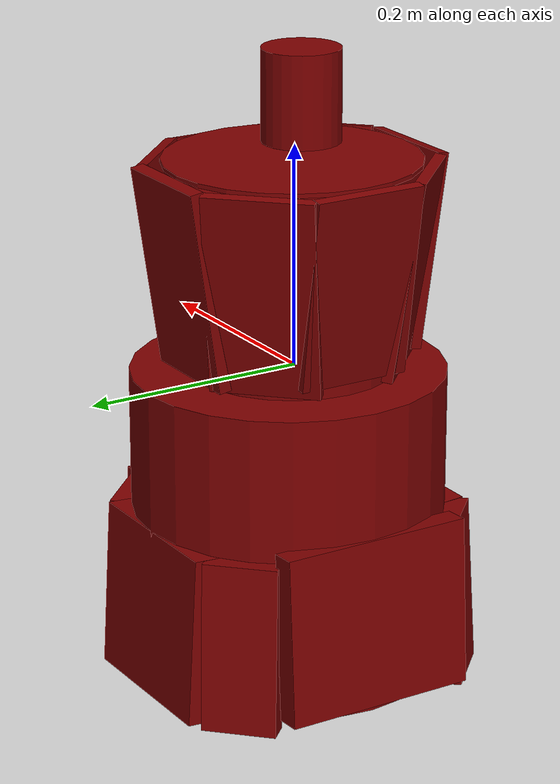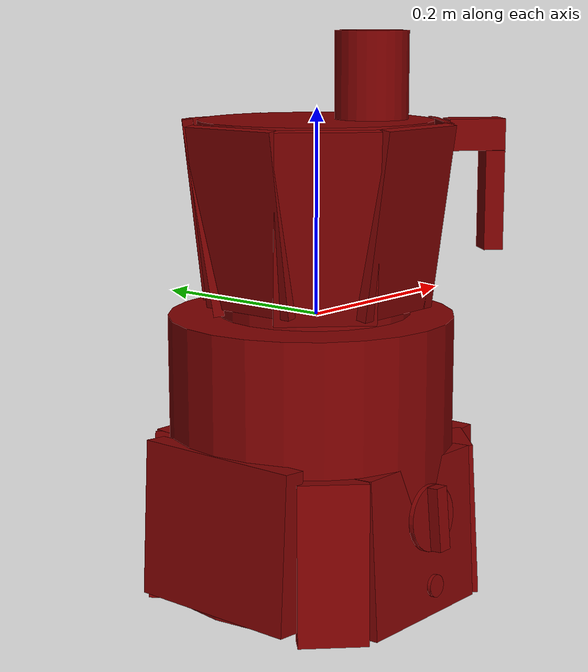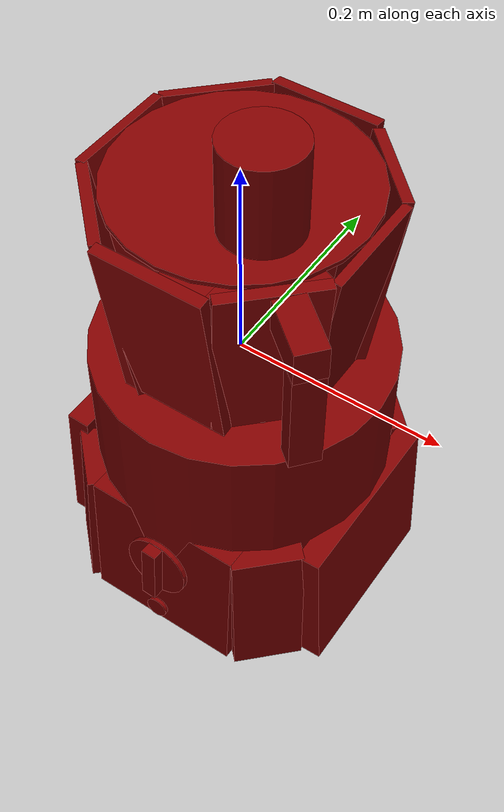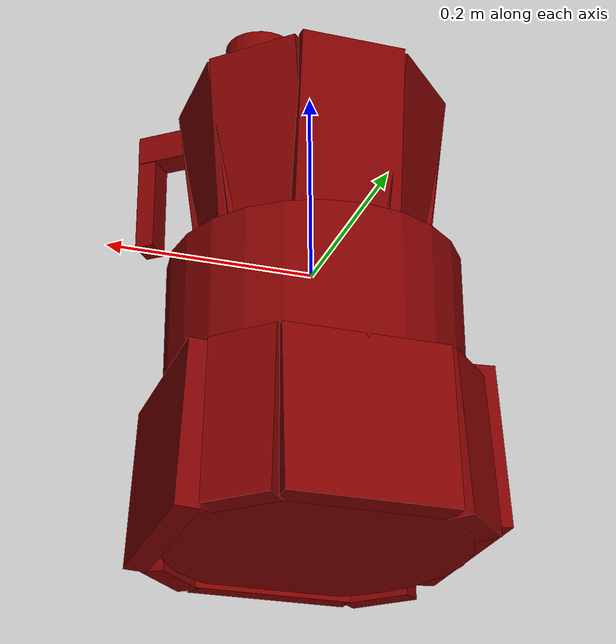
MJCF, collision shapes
<?xml version='1.0' encoding='UTF-8'?>
<mujoco model="model">
  <option timestep="0.002" gravity="0.0 0.0 -9.81"/>
  <compiler angle="radian"/>
  <asset>
    <mesh file="visuals/Blade001.obj" name="Blade001_vis"/>
    <mesh file="visuals/Body001.obj" name="Body001_vis"/>
    <mesh file="visuals/Button001.obj" name="Button001_vis"/>
    <mesh file="visuals/Jug001.obj" name="Jug001_vis"/>
    <mesh file="visuals/Jug001_Clear.obj" name="Jug001_Clear_vis"/>
    <mesh file="visuals/Knob001.obj" name="Knob001_vis"/>
    <mesh file="visuals/Lid001.obj" name="Lid001_vis"/>
    <texture file="visuals/T_BC001.png" name="Body001_material" type="2d"/>
    <material name="Body001_material" rgba="1 1 1 1.0" texture="Body001_material" shininess="0.1" specular="0.4"/>
    <texture file="visuals/T_BC001.png" name="Button001_material" type="2d"/>
    <material name="Button001_material" rgba="1 1 1 1.0" texture="Button001_material" shininess="0.4472135901451111" specular="2"/>
    <texture file="visuals/T_BC001.png" name="Jug001_material" type="2d"/>
    <material name="Jug001_material" rgba="1 1 1 1.0" texture="Jug001_material" shininess="0.4472135901451111" specular="2"/>
    <texture file="visuals/T_BC001.png" name="Blade001_material" type="2d"/>
    <material name="Blade001_material" rgba="1 1 1 1.0" texture="Blade001_material" shininess="0.4472135901451111" specular="2"/>
    <texture file="visuals/T_BC001.png" name="Jug001_Clear_material" type="2d"/>
    <material name="Jug001_Clear_material" rgba="1 1 1 0.800000011920929" texture="Jug001_Clear_material" shininess="0.6880392730236053" specular="0.3"/>
    <texture file="visuals/T_BC001.png" name="Lid001_material" type="2d"/>
    <material name="Lid001_material" rgba="1 1 1 1.0" texture="Lid001_material" shininess="0.4472135901451111" specular="2"/>
    <texture file="visuals/T_BC001.png" name="Knob001_material" type="2d"/>
    <material name="Knob001_material" rgba="1 1 1 1.0" texture="Knob001_material" shininess="0.4472135901451111" specular="2"/>
  </asset>
  <default>
    <default class="visual">
      <geom conaffinity="0" contype="0" group="1" type="mesh"/>
    </default>
    <default class="collision">
      <geom group="0" rgba="0.5 0 0 0.5"/>
    </default>
    <default class="spawn">
      <geom group="0" rgba="1 1 1 0.5" contype="0" conaffinity="0"/>
      <site group="0" rgba="1 1 1 0.5"/>
    </default>
    <default class="region">
      <geom group="1" conaffinity="0" contype="0" rgba="0 1 0 0"/>
    </default>
  </default>
  <worldbody>
    <body>
      <body name="object">
        <geom mesh="Body001_vis" type="mesh" solimp="0.998 0.998 0.001" solref="0.001 1" friction="0.95 0.3 0.1" class="visual" material="Body001_material"/>
        <geom class="collision" type="box" pos="-0.13592041 0.00416990 -0.19115232" size="0.011498981155455112 0.08904076367616653 0.07649284601211548" quat="0.9995970129966736 0.0 0.028387276455760002 0.0"/>
        <geom class="collision" type="cylinder" pos="-0.00066953 0.00646827 -0.13779943" size="0.14031340181827545 0.13831281661987305" quat="1.0 0.0 0.0 0.0"/>
        <geom class="collision" type="box" pos="0.13594456 0.00218360 -0.20372824" size="0.011498981155455112 0.08964601904153824 0.07649284601211548" quat="0.9995970129966736 0.0 -0.02838727831840515 0.0"/>
        <geom class="collision" type="box" pos="-0.00023109 0.13935284 -0.20372824" size="0.011498981155455112 0.07770014554262161 0.07649284601211548" quat="0.706821858882904 0.020072845742106438 -0.020072847604751587 0.7068217992782593"/>
        <geom class="collision" type="box" pos="0.09919563 0.11513875 -0.20402126" size="0.011498980224132538 0.03311116248369217 0.07649284601211548" quat="0.9235072135925293 0.010863340459764004 -0.026226429268717766 0.38252919912338257"/>
        <geom class="collision" type="box" pos="-0.10141344 0.11513874 -0.20402126" size="0.011498981155455112 0.03311115875840187 0.07649284601211548" quat="0.9235072135925293 0.010863344185054302 0.026226438581943512 -0.3825291395187378"/>
        <geom class="collision" type="box" pos="-0.10141344 -0.10372262 -0.20402126" size="0.011498981155455112 0.03311115875840187 0.07649284601211548" quat="0.9235072135925293 -0.0108633479103446 0.026226449757814407 0.3825291693210602"/>
        <geom class="collision" type="box" pos="0.09919562 -0.10372262 -0.20402126" size="0.011498981155455112 0.03311115875840187 0.07649284601211548" quat="0.9235072135925293 -0.010863343253731728 -0.026226434856653214 -0.3825291395187378"/>
        <geom class="collision" type="box" pos="-0.00023109 -0.12329688 -0.20378314" size="0.01053176075220108 0.07770014554262161 0.07649284601211548" quat="0.706821858882904 -0.020072845742106438 -0.020072847604751587 -0.7068217992782593"/>
        <body name="Button001">
          <joint axis="0.0 0.9966602325439453 -0.08166057616472244" pos="0.00150807 -0.14566042 -0.24573395" limited="true" name="Button001_joint" range="0.0 0.003" type="slide" damping="1" frictionloss="1" armature=".01" stiffness="0.05" springref="-0.5"/>
          <geom mesh="Button001_vis" type="mesh" solimp="0.998 0.998 0.001" solref="0.001 1" friction="0.95 0.3 0.1" class="visual" material="Button001_material"/>
          <geom class="collision" type="cylinder" pos="0.00170298 -0.14624300 -0.24569818" size="0.010810940526425838 0.001899766270071268" quat="0.6749454736709595 -0.7377176880836487 0.005227869376540184 0.013924829661846161"/>
        </body>
        <body name="Jug001">
          <joint axis="0.0 0.0 1.0" pos="0.01368786 -0.00085856 0.09369694" limited="true" name="Jug001_joint" range="0.0 0.1" type="slide" damping="1" frictionloss="1" armature=".01" stiffness="0.05"/>
          <geom mesh="Jug001_vis" type="mesh" solimp="0.998 0.998 0.001" solref="0.001 1" friction="0.95 0.3 0.1" class="visual" material="Jug001_material"/>
          <geom class="collision" type="cylinder" pos="-0.00102258 0.00505354 0.12870902" size="0.0086982948705554 0.05517284944653511" quat="1.0 0.0 0.0 0.0"/>
          <geom class="collision" type="cylinder" pos="-0.00007492 0.00280522 0.01773963" size="0.09389330446720123 0.016140157356858253" quat="1.0 0.0 0.0 0.0"/>
          <geom class="collision" type="box" pos="0.11953454 -0.09948118 0.17314580" size="0.013613344170153141 0.02776089869439602 0.015190458856523037" quat="0.9058365821838379 0.0 0.0 0.4236273169517517"/>
          <geom class="collision" type="box" pos="0.13307938 -0.11145782 0.10917147" size="0.013502799905836582 0.009573325514793396 0.04846155270934105" quat="0.9058365821838379 0.0 0.0 0.4236273169517517"/>
          <geom class="collision" type="box" pos="0.00082975 0.11225362 0.09796815" size="0.05125673860311508 0.006122444290667772 0.08999137580394745" quat="0.9973172545433044 -0.07320006936788559 0.0 0.0"/>
          <geom class="collision" type="box" pos="0.10576703 0.00173349 0.09742537" size="0.051528241485357285 0.0040107835084199905 0.08897125720977783" quat="0.7052098512649536 -0.0517602264881134 0.051760219037532806 -0.7052097916603088"/>
          <geom class="collision" type="box" pos="0.00082975 -0.10763947 0.09948440" size="0.05125673860311508 0.005388589575886726 0.08828059583902359" quat="7.52953610572149e-08 -5.526434421199156e-09 0.07320006936788559 -0.9973172545433044"/>
          <geom class="collision" type="box" pos="-0.10705413 0.00173347 0.10076386" size="0.051528241485357285 0.00485691474750638 0.08673109114170074" quat="0.7052098512649536 -0.0517602264881134 -0.0517602264881134 0.7052097916603088"/>
          <geom class="collision" type="box" pos="0.07684596 0.07774969 0.09845117" size="0.045730192214250565 0.005176766309887171 0.08872608095407486" quat="0.9214010238647461 -0.06762798875570297 0.028012456372380257 -0.38165685534477234"/>
          <geom class="collision" type="box" pos="-0.07620352 0.07876674 0.09698983" size="0.048428039997816086 0.005164290312677622 0.09014152735471725" quat="0.9214010238647461 -0.06762799620628357 -0.028012439608573914 0.38165685534477234"/>
          <geom class="collision" type="box" pos="-0.07507589 -0.07417214 0.09696825" size="0.04781375452876091 0.004935937002301216 0.09029550850391388" quat="0.38165679574012756 -0.028012432157993317 -0.06762800365686417 0.9214010238647461"/>
          <geom class="collision" type="box" pos="0.07701180 -0.07444855 0.10008390" size="0.04515534266829491 0.0049200886860489845 0.08869536966085434" quat="0.38165679574012756 -0.028012439608573914 0.06762800365686417 -0.9214010238647461"/>
          <geom class="collision" type="cylinder" pos="-0.00102258 0.00505354 0.04985800" size="0.01608540304005146 0.015532627701759338" quat="1.0 0.0 0.0 0.0"/>
          <body name="Blade001">
            <joint axis="0.0 0.0 1.0" pos="-0.00163471 0.00455088 0.07644143" limited="false" name="Blade001_joint" range="0 360" type="hinge" damping="1" frictionloss="1" armature=".01" stiffness="0.05"/>
            <geom mesh="Blade001_vis" type="mesh" solimp="0.998 0.998 0.001" solref="0.001 1" friction="0.95 0.3 0.1" class="visual" material="Blade001_material"/>
            <geom class="collision" type="box" pos="-0.00189308 0.00328441 0.07147215" size="0.015887247398495674 0.040357667952775955 0.0015504435868933797" quat="1.0 0.0 0.0 0.0"/>
            <geom class="collision" type="box" pos="-0.03375625 0.00516930 0.07147215" size="0.015887247398495674 0.014575560577213764 0.0015504435868933797" quat="1.0 0.0 0.0 0.0"/>
            <geom class="collision" type="box" pos="0.02996101 0.00516930 0.07147215" size="0.015887247398495674 0.014575560577213764 0.0015504435868933797" quat="1.0 0.0 0.0 0.0"/>
            <geom class="collision" type="box" pos="0.06445124 0.00516930 0.08742443" size="0.022117655724287033 0.014575560577213764 0.0015504439361393452" quat="0.9253676533699036 0.0 -0.37907081842422485 0.0"/>
            <geom class="collision" type="box" pos="-0.06792761 0.00516930 0.08742443" size="0.022117655724287033 0.014575560577213764 0.0015504439361393452" quat="4.008005873856746e-07 -0.9253676533699036 1.641853515366165e-07 0.37907081842422485"/>
            <geom class="collision" type="box" pos="-0.00173819 0.06714567 0.06342065" size="0.026381054893136024 0.014575560577213764 0.001550444052554667" quat="0.13120178878307343 0.6948279738426208 0.6948282718658447 -0.13120168447494507"/>
            <geom class="collision" type="box" pos="-0.00173819 -0.05776433 0.06351814" size="0.026113703846931458 0.014575560577213764 0.001550444052554667" quat="0.6948281526565552 0.13120175898075104 -0.13120178878307343 0.6948280930519104"/>
          </body>
          <body name="Jug001_Clear">
            <geom class="region" name="reg_int" type="box" pos="0.0 0.002349129999999998 0.13896324999999998" size="0.07470576 0.07279912999999999 0.03517959999999999"/>
            <geom mesh="Jug001_Clear_vis" type="mesh" solimp="0.998 0.998 0.001" solref="0.001 1" friction="0.95 0.3 0.1" class="visual" material="Jug001_Clear_material"/>
            <geom class="collision" type="box" pos="0.00082975 0.11225362 0.09796815" size="0.05125673860311508 0.006122444290667772 0.08999137580394745" quat="0.9973172545433044 -0.07320006936788559 0.0 0.0"/>
            <geom class="collision" type="box" pos="0.10576703 0.00173349 0.09742537" size="0.051528241485357285 0.0040107835084199905 0.08897125720977783" quat="0.7052098512649536 -0.0517602264881134 0.051760219037532806 -0.7052097916603088"/>
            <geom class="collision" type="box" pos="0.00082975 -0.10763947 0.09948440" size="0.05125673860311508 0.005388589575886726 0.08828059583902359" quat="7.52953610572149e-08 -5.526434421199156e-09 0.07320006936788559 -0.9973172545433044"/>
            <geom class="collision" type="box" pos="-0.10705413 0.00173347 0.10076386" size="0.051528241485357285 0.00485691474750638 0.08673109114170074" quat="0.7052098512649536 -0.0517602264881134 -0.0517602264881134 0.7052097916603088"/>
            <geom class="collision" type="box" pos="0.07684596 0.07774969 0.09845117" size="0.045730192214250565 0.005176766309887171 0.08872608095407486" quat="0.9214010238647461 -0.06762798875570297 0.028012456372380257 -0.38165685534477234"/>
            <geom class="collision" type="box" pos="-0.07620352 0.07876674 0.09698983" size="0.048428039997816086 0.005164290312677622 0.09014152735471725" quat="0.9214010238647461 -0.06762799620628357 -0.028012439608573914 0.38165685534477234"/>
            <geom class="collision" type="box" pos="-0.07507589 -0.07417214 0.09696825" size="0.04781375452876091 0.004935937002301216 0.09029550850391388" quat="0.38165679574012756 -0.028012432157993317 -0.06762800365686417 0.9214010238647461"/>
            <geom class="collision" type="box" pos="0.07701180 -0.07444855 0.10008390" size="0.04515534266829491 0.0049200886860489845 0.08869536966085434" quat="0.38165679574012756 -0.028012439608573914 0.06762800365686417 -0.9214010238647461"/>
          </body>
          <body name="Lid001">
            <joint axis="0.0 0.0 1.0" pos="-0.00133377 0.00397790 0.22388953" limited="true" name="Lid001_joint" range="0.0 0.1" type="slide" damping="1" frictionloss="1" armature=".01" stiffness="0.05"/>
            <geom mesh="Lid001_vis" type="mesh" solimp="0.998 0.998 0.001" solref="0.001 1" friction="0.95 0.3 0.1" class="visual" material="Lid001_material"/>
            <geom class="collision" type="cylinder" pos="0.00082973 0.00173348 0.18676125" size="0.1136881560087204 0.0019425016362220049" quat="1.0 0.0 0.0 0.0"/>
            <geom class="collision" type="cylinder" pos="0.04231317 -0.03319060 0.23048738" size="0.03576243296265602 0.041802436113357544" quat="1.0 0.0 0.0 0.0"/>
          </body>
        </body>
        <body name="Knob001">
          <joint axis="0.0 0.995547354221344 -0.0942634716629982" pos="0.00197975 -0.14517417 -0.17814225" limited="true" name="Knob001_joint" range="0.0 3.9269908169872414" type="hinge" damping="0.05" armature="0.001"/>
          <geom mesh="Knob001_vis" type="mesh" solimp="0.998 0.998 0.001" solref="0.001 1" friction="0.95 0.3 0.1" class="visual" material="Knob001_material"/>
          <geom class="collision" type="box" pos="0.00169428 -0.14873738 -0.17785837" size="0.00748627120628953 0.005762665998190641 0.030705105513334274" quat="0.9989962577819824 -0.04259015992283821 -0.004050229676067829 -0.013270184397697449"/>
          <geom class="collision" type="cylinder" pos="0.00164957 -0.14020852 -0.17891090" size="0.032203298062086105 0.002435933565720916" quat="0.7291671633720398 0.6755023002624512 -0.07591302692890167 0.07905163615942001"/>
        </body>
        <geom class="region" name="reg_main" type="box" pos="-4.999999997368221e-09 0.005268090000000003 0.0" size="0.152660455 0.15285335 0.27435709"/>
      </body>
    </body>
  </worldbody>
  <actuator>
    <motor name="Button001_joint_actuator" joint="Button001_joint" gear="0.5"/>
    <motor name="Jug001_joint_actuator" joint="Jug001_joint" gear="0.5"/>
    <motor name="Knob001_joint_actuator" joint="Knob001_joint" gear="0.5"/>
    <motor name="Blade001_joint_actuator" joint="Blade001_joint" gear="20"/>
    <motor name="Lid001_joint_actuator" joint="Lid001_joint" gear="0.5"/>
  </actuator>
</mujoco>
